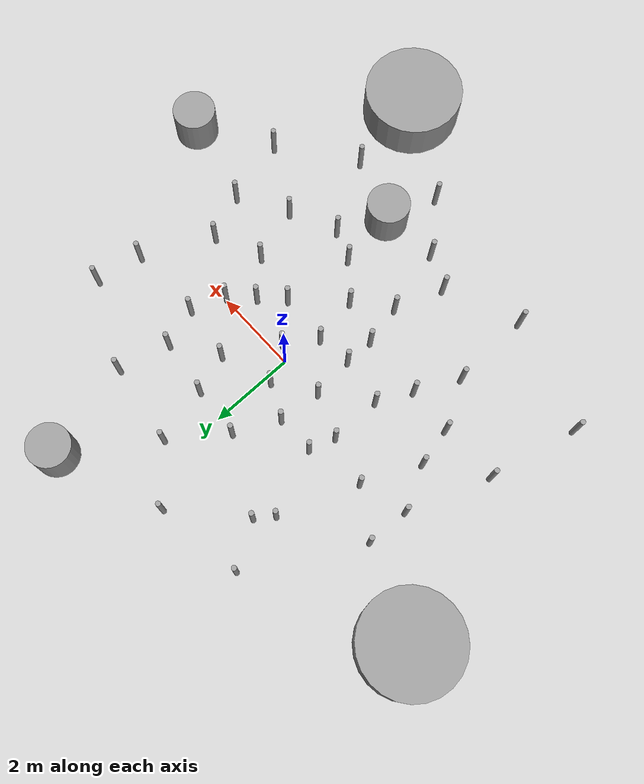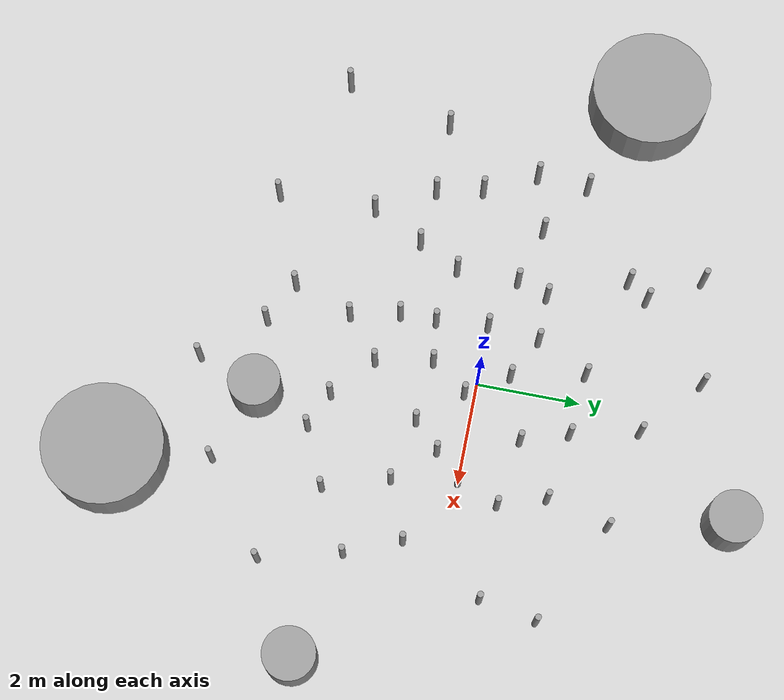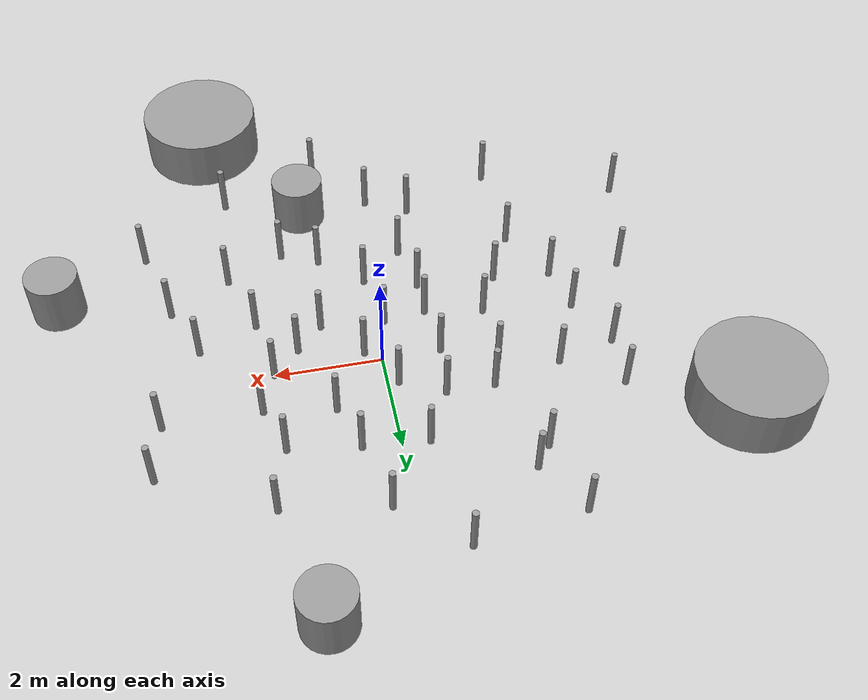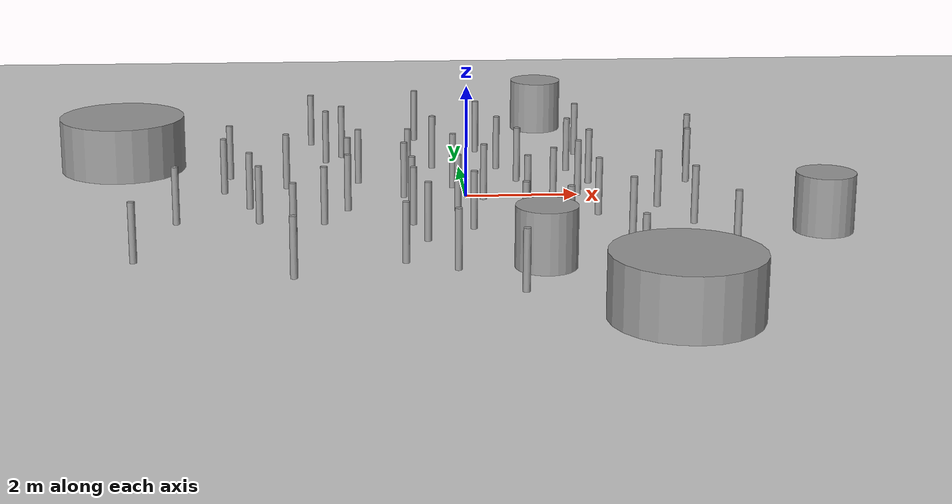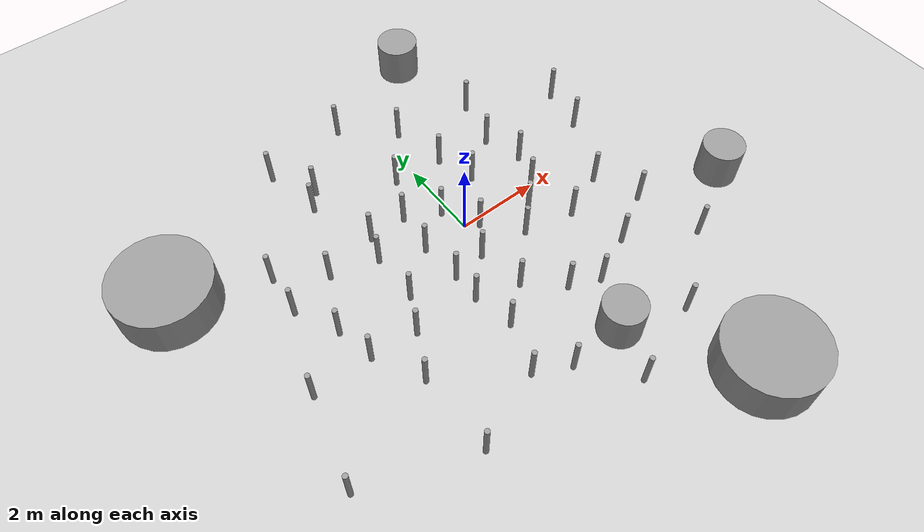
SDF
<sdf version="1.7">
 <world name="default">
  <plugin name="gazebo_ros_state" filename="libgazebo_ros_state.so">
   <ros>
    <namespace>/gazebo</namespace>
    <argument>model_states:=model_states_demo</argument>
    <argument>link_states:=link_states_demo</argument>
   </ros>
   <update_rate>1.0</update_rate>
  </plugin>
  <light name="sun" type="directional">
   <pose>0 0 10 0 -0 0</pose>
   <diffuse>0.8 0.8 0.8 1</diffuse>
   <specular>0.2 0.2 0.2 1</specular>
   <attenuation>
    <range>1000</range>
    <constant>0.9</constant>
    <linear>0.01</linear>
    <quadratic>0.001</quadratic>
   </attenuation>
   <direction>-0.5 0.1 -0.9</direction>
   <spot><inner_angle>0</inner_angle><outer_angle>0</outer_angle><falloff>0</falloff></spot>
  </light>
  <model name="ground_plane">
   <static>1</static>
   <link name="link">
    <collision name="collision">
     <geometry><plane><normal>0 0 1</normal><size>100 100</size></plane></geometry>
     <surface><friction><ode><mu>100</mu><mu2>50</mu2></ode></friction></surface>
    </collision>
    <visual name="visual">
     <cast_shadows>0</cast_shadows>
     <geometry><plane><normal>0 0 1</normal><size>100 100</size></plane></geometry>
     <material>
      <script><uri>file://media/materials/scripts/gazebo.material</uri><name>Gazebo/Grey</name></script>
     </material>
    </visual>
   </link>
  </model>
  <gravity>0 0 -9.8</gravity>
  <magnetic_field>6e-06 2.3e-05 -4.2e-05</magnetic_field>
  <atmosphere type="adiabatic"/>
  <physics type="ode">
   <max_step_size>0.001</max_step_size>
   <real_time_factor>1</real_time_factor>
   <real_time_update_rate>1000</real_time_update_rate>
  </physics>
  <scene><ambient>0.4 0.4 0.4 1</ambient><background>0.7 0.7 0.7 1</background><shadows>1</shadows></scene>
  <spherical_coordinates>
   <surface_model>EARTH_WGS84</surface_model>
   <latitude_deg>0</latitude_deg>
   <longitude_deg>0</longitude_deg>
   <elevation>0</elevation>
   <heading_deg>0</heading_deg>
  </spherical_coordinates>
  <model name="unit_cylinder_0_clone">
   <pose>1.00006 -0.999898 0.499992 0 -0 0.000604</pose>
   <link name="link">
    <inertial>
     <mass>1</mass>
     <inertia><ixx>0.145833</ixx><ixy>0</ixy><ixz>0</ixz><iyy>0.145833</iyy><iyz>0</iyz><izz>0.125</izz></inertia>
    </inertial>
    <collision name="collision">
     <geometry><cylinder><radius>0.06</radius><length>1</length></cylinder></geometry>
    </collision>
    <visual name="visual">
     <geometry><cylinder><radius>0.06</radius><length>1</length></cylinder></geometry>
     <material>
      <script><name>Gazebo/Grey</name><uri>file://media/materials/scripts/gazebo.material</uri></script>
     </material>
    </visual>
   </link>
  </model>
  <model name="unit_cylinder_0_clone_0">
   <pose>-0.999946 1.00011 0.499993 -1e-06 0 0.00091</pose>
   <link name="link">
    <inertial>
     <mass>1</mass>
     <inertia><ixx>0.145833</ixx><ixy>0</ixy><ixz>0</ixz><iyy>0.145833</iyy><iyz>0</iyz><izz>0.125</izz></inertia>
    </inertial>
    <collision name="collision">
     <geometry><cylinder><radius>0.06</radius><length>1</length></cylinder></geometry>
    </collision>
    <visual name="visual">
     <geometry><cylinder><radius>0.06</radius><length>1</length></cylinder></geometry>
     <material>
      <script><name>Gazebo/Grey</name><uri>file://media/materials/scripts/gazebo.material</uri></script>
     </material>
    </visual>
   </link>
  </model>
  <model name="unit_cylinder_0_clone_1">
   <pose>-0.999947 -0.999936 0.499995 0 0 -0.005683</pose>
   <link name="link">
    <inertial>
     <mass>1</mass>
     <inertia><ixx>0.145833</ixx><ixy>0</ixy><ixz>0</ixz><iyy>0.145833</iyy><iyz>0</iyz><izz>0.125</izz></inertia>
    </inertial>
    <collision name="collision">
     <geometry><cylinder><radius>0.06</radius><length>1</length></cylinder></geometry>
    </collision>
    <visual name="visual">
     <geometry><cylinder><radius>0.06</radius><length>1</length></cylinder></geometry>
     <material>
      <script><name>Gazebo/Grey</name><uri>file://media/materials/scripts/gazebo.material</uri></script>
     </material>
    </visual>
   </link>
  </model>
  <model name="unit_cylinder_0_clone_2">
   <pose>2.00006 8.5e-05 0.499995 0 0 -0.001848</pose>
   <link name="link">
    <inertial>
     <mass>1</mass>
     <inertia><ixx>0.145833</ixx><ixy>0</ixy><ixz>0</ixz><iyy>0.145833</iyy><iyz>0</iyz><izz>0.125</izz></inertia>
    </inertial>
    <collision name="collision">
     <geometry><cylinder><radius>0.06</radius><length>1</length></cylinder></geometry>
    </collision>
    <visual name="visual">
     <geometry><cylinder><radius>0.06</radius><length>1</length></cylinder></geometry>
     <material>
      <script><name>Gazebo/Grey</name><uri>file://media/materials/scripts/gazebo.material</uri></script>
     </material>
    </visual>
   </link>
  </model>
  <model name="unit_cylinder_0_clone_3">
   <pose>5.8e-05 -1.9999 0.499992 0 -0 0.000986</pose>
   <link name="link">
    <inertial>
     <mass>1</mass>
     <inertia><ixx>0.145833</ixx><ixy>0</ixy><ixz>0</ixz><iyy>0.145833</iyy><iyz>0</iyz><izz>0.125</izz></inertia>
    </inertial>
    <collision name="collision">
     <geometry><cylinder><radius>0.06</radius><length>1</length></cylinder></geometry>
    </collision>
    <visual name="visual">
     <geometry><cylinder><radius>0.06</radius><length>1</length></cylinder></geometry>
     <material>
      <script><name>Gazebo/Grey</name><uri>file://media/materials/scripts/gazebo.material</uri></script>
     </material>
    </visual>
   </link>
  </model>
  <model name="unit_cylinder_0_clone_4">
   <pose>1.50006 -2.9999 0.499992 -1e-06 0 0.000952</pose>
   <link name="link">
    <inertial>
     <mass>1</mass>
     <inertia><ixx>0.145833</ixx><ixy>0</ixy><ixz>0</ixz><iyy>0.145833</iyy><iyz>0</iyz><izz>0.125</izz></inertia>
    </inertial>
    <collision name="collision">
     <geometry><cylinder><radius>0.06</radius><length>1</length></cylinder></geometry>
    </collision>
    <visual name="visual">
     <geometry><cylinder><radius>0.06</radius><length>1</length></cylinder></geometry>
     <material>
      <script><name>Gazebo/Grey</name><uri>file://media/materials/scripts/gazebo.material</uri></script>
     </material>
    </visual>
   </link>
  </model>
  <model name="unit_cylinder_0_clone_5">
   <pose>-0.499955 2.00008 0.499992 0 -0 0.000494</pose>
   <link name="link">
    <inertial>
     <mass>1</mass>
     <inertia><ixx>0.145833</ixx><ixy>0</ixy><ixz>0</ixz><iyy>0.145833</iyy><iyz>0</iyz><izz>0.125</izz></inertia>
    </inertial>
    <collision name="collision">
     <geometry><cylinder><radius>0.06</radius><length>1</length></cylinder></geometry>
    </collision>
    <visual name="visual">
     <geometry><cylinder><radius>0.06</radius><length>1</length></cylinder></geometry>
     <material>
      <script><name>Gazebo/Grey</name><uri>file://media/materials/scripts/gazebo.material</uri></script>
     </material>
    </visual>
   </link>
  </model>
  <model name="unit_cylinder_0_clone_6">
   <pose>-0.999952 -1.69991 0.499992 0 -0 0.000467</pose>
   <link name="link">
    <inertial>
     <mass>1</mass>
     <inertia><ixx>0.145833</ixx><ixy>0</ixy><ixz>0</ixz><iyy>0.145833</iyy><iyz>0</iyz><izz>0.125</izz></inertia>
    </inertial>
    <collision name="collision">
     <geometry><cylinder><radius>0.06</radius><length>1</length></cylinder></geometry>
    </collision>
    <visual name="visual">
     <geometry><cylinder><radius>0.06</radius><length>1</length></cylinder></geometry>
     <material>
      <script><name>Gazebo/Grey</name><uri>file://media/materials/scripts/gazebo.material</uri></script>
     </material>
    </visual>
   </link>
  </model>
  <model name="unit_cylinder_0_clone_7">
   <pose>2.30005 0.80008 0.499998 0 -0 0.000127</pose>
   <link name="link">
    <inertial>
     <mass>1</mass>
     <inertia><ixx>0.145833</ixx><ixy>0</ixy><ixz>0</ixz><iyy>0.145833</iyy><iyz>0</iyz><izz>0.125</izz></inertia>
    </inertial>
    <collision name="collision">
     <geometry><cylinder><radius>0.06</radius><length>1</length></cylinder></geometry>
    </collision>
    <visual name="visual">
     <geometry><cylinder><radius>0.06</radius><length>1</length></cylinder></geometry>
     <material>
      <script><name>Gazebo/Grey</name><uri>file://media/materials/scripts/gazebo.material</uri></script>
     </material>
    </visual>
   </link>
  </model>
  <model name="unit_cylinder_0_clone_8">
   <pose>-1.09995 8.5e-05 0.499993 0 -0 0.000661</pose>
   <link name="link">
    <inertial>
     <mass>1</mass>
     <inertia><ixx>0.145833</ixx><ixy>0</ixy><ixz>0</ixz><iyy>0.145833</iyy><iyz>0</iyz><izz>0.125</izz></inertia>
    </inertial>
    <collision name="collision">
     <geometry><cylinder><radius>0.06</radius><length>1</length></cylinder></geometry>
    </collision>
    <visual name="visual">
     <geometry><cylinder><radius>0.06</radius><length>1</length></cylinder></geometry>
     <material>
      <script><name>Gazebo/Grey</name><uri>file://media/materials/scripts/gazebo.material</uri></script>
     </material>
    </visual>
   </link>
  </model>
  <model name="unit_cylinder_0_clone_9">
   <pose>3.30004 -0.799924 0.499992 0 -0 0.000395</pose>
   <link name="link">
    <inertial>
     <mass>1</mass>
     <inertia><ixx>0.145833</ixx><ixy>0</ixy><ixz>0</ixz><iyy>0.145833</iyy><iyz>0</iyz><izz>0.125</izz></inertia>
    </inertial>
    <collision name="collision">
     <geometry><cylinder><radius>0.06</radius><length>1</length></cylinder></geometry>
    </collision>
    <visual name="visual">
     <geometry><cylinder><radius>0.06</radius><length>1</length></cylinder></geometry>
     <material>
      <script><name>Gazebo/Grey</name><uri>file://media/materials/scripts/gazebo.material</uri></script>
     </material>
    </visual>
   </link>
  </model>
  <model name="unit_cylinder_0_clone_10">
   <pose>-1.89995 1.00005 0.499995 0 0 -0.005036</pose>
   <link name="link">
    <inertial>
     <mass>1</mass>
     <inertia><ixx>0.145833</ixx><ixy>0</ixy><ixz>0</ixz><iyy>0.145833</iyy><iyz>0</iyz><izz>0.125</izz></inertia>
    </inertial>
    <collision name="collision">
     <geometry><cylinder><radius>0.06</radius><length>1</length></cylinder></geometry>
    </collision>
    <visual name="visual">
     <geometry><cylinder><radius>0.06</radius><length>1</length></cylinder></geometry>
     <material>
      <script><name>Gazebo/Grey</name><uri>file://media/materials/scripts/gazebo.material</uri></script>
     </material>
    </visual>
   </link>
  </model>
  <model name="unit_cylinder_0_clone_11">
   <pose>0.800044 -2.69993 0.499993 0 -0 0.000522</pose>
   <link name="link">
    <inertial>
     <mass>1</mass>
     <inertia><ixx>0.145833</ixx><ixy>0</ixy><ixz>0</ixz><iyy>0.145833</iyy><iyz>0</iyz><izz>0.125</izz></inertia>
    </inertial>
    <collision name="collision">
     <geometry><cylinder><radius>0.06</radius><length>1</length></cylinder></geometry>
    </collision>
    <visual name="visual">
     <geometry><cylinder><radius>0.06</radius><length>1</length></cylinder></geometry>
     <material>
      <script><name>Gazebo/Grey</name><uri>file://media/materials/scripts/gazebo.material</uri></script>
     </material>
    </visual>
   </link>
  </model>
  <model name="unit_cylinder_0_clone_12">
   <pose>0.30004 -0.199926 0.499997 0 -0 0.000552</pose>
   <link name="link">
    <inertial>
     <mass>1</mass>
     <inertia><ixx>0.145833</ixx><ixy>0</ixy><ixz>0</ixz><iyy>0.145833</iyy><iyz>0</iyz><izz>0.125</izz></inertia>
    </inertial>
    <collision name="collision">
     <geometry><cylinder><radius>0.06</radius><length>1</length></cylinder></geometry>
    </collision>
    <visual name="visual">
     <geometry><cylinder><radius>0.06</radius><length>1</length></cylinder></geometry>
     <material>
      <script><name>Gazebo/Grey</name><uri>file://media/materials/scripts/gazebo.material</uri></script>
     </material>
    </visual>
   </link>
  </model>
  <model name="unit_cylinder_0_clone_13">
   <pose>-0.199959 0.600079 0.499992 0 -0 0.000937</pose>
   <link name="link">
    <inertial>
     <mass>1</mass>
     <inertia><ixx>0.145833</ixx><ixy>0</ixy><ixz>0</ixz><iyy>0.145833</iyy><iyz>0</iyz><izz>0.125</izz></inertia>
    </inertial>
    <collision name="collision">
     <geometry><cylinder><radius>0.06</radius><length>1</length></cylinder></geometry>
    </collision>
    <visual name="visual">
     <geometry><cylinder><radius>0.06</radius><length>1</length></cylinder></geometry>
     <material>
      <script><name>Gazebo/Grey</name><uri>file://media/materials/scripts/gazebo.material</uri></script>
     </material>
    </visual>
   </link>
  </model>
  <model name="unit_cylinder_0_clone_14">
   <pose>-2.09997 -0.799925 0.499998 -1e-06 -0 0.000723</pose>
   <link name="link">
    <inertial>
     <mass>1</mass>
     <inertia><ixx>0.145833</ixx><ixy>0</ixy><ixz>0</ixz><iyy>0.145833</iyy><iyz>0</iyz><izz>0.125</izz></inertia>
    </inertial>
    <collision name="collision">
     <geometry><cylinder><radius>0.06</radius><length>1</length></cylinder></geometry>
    </collision>
    <visual name="visual">
     <geometry><cylinder><radius>0.06</radius><length>1</length></cylinder></geometry>
     <material>
      <script><name>Gazebo/Grey</name><uri>file://media/materials/scripts/gazebo.material</uri></script>
     </material>
    </visual>
   </link>
  </model>
  <model name="unit_cylinder_0_clone_15">
   <pose>-0.199963 -0.89993 0.499998 -1e-06 0 0.000563</pose>
   <link name="link">
    <inertial>
     <mass>1</mass>
     <inertia><ixx>0.145833</ixx><ixy>0</ixy><ixz>0</ixz><iyy>0.145833</iyy><iyz>0</iyz><izz>0.125</izz></inertia>
    </inertial>
    <collision name="collision">
     <geometry><cylinder><radius>0.06</radius><length>1</length></cylinder></geometry>
    </collision>
    <visual name="visual">
     <geometry><cylinder><radius>0.06</radius><length>1</length></cylinder></geometry>
     <material>
      <script><name>Gazebo/Grey</name><uri>file://media/materials/scripts/gazebo.material</uri></script>
     </material>
    </visual>
   </link>
  </model>
  <model name="unit_cylinder_0_clone_16">
   <pose>0.700038 1.90007 0.5 1e-06 -0 0.000552</pose>
   <link name="link">
    <inertial>
     <mass>1</mass>
     <inertia><ixx>0.145833</ixx><ixy>0</ixy><ixz>0</ixz><iyy>0.145833</iyy><iyz>0</iyz><izz>0.125</izz></inertia>
    </inertial>
    <collision name="collision">
     <geometry><cylinder><radius>0.06</radius><length>1</length></cylinder></geometry>
    </collision>
    <visual name="visual">
     <geometry><cylinder><radius>0.06</radius><length>1</length></cylinder></geometry>
     <material>
      <script><name>Gazebo/Grey</name><uri>file://media/materials/scripts/gazebo.material</uri></script>
     </material>
    </visual>
   </link>
  </model>
  <model name="unit_cylinder_0_clone_17">
   <pose>1.50004 -0.499918 0.499998 0 -0 0.000994</pose>
   <link name="link">
    <inertial>
     <mass>1</mass>
     <inertia><ixx>0.145833</ixx><ixy>0</ixy><ixz>0</ixz><iyy>0.145833</iyy><iyz>0</iyz><izz>0.125</izz></inertia>
    </inertial>
    <collision name="collision">
     <geometry><cylinder><radius>0.06</radius><length>1</length></cylinder></geometry>
    </collision>
    <visual name="visual">
     <geometry><cylinder><radius>0.06</radius><length>1</length></cylinder></geometry>
     <material>
      <script><name>Gazebo/Grey</name><uri>file://media/materials/scripts/gazebo.material</uri></script>
     </material>
    </visual>
   </link>
  </model>
  <model name="unit_cylinder_0_clone_13_clone">
   <pose>1.00004 1.00005 0.499995 0 0 -0.002487</pose>
   <link name="link">
    <inertial>
     <mass>1</mass>
     <inertia><ixx>0.145833</ixx><ixy>0</ixy><ixz>0</ixz><iyy>0.145833</iyy><iyz>0</iyz><izz>0.125</izz></inertia>
    </inertial>
    <collision name="collision">
     <geometry><cylinder><radius>0.06</radius><length>1</length></cylinder></geometry>
    </collision>
    <visual name="visual">
     <geometry><cylinder><radius>0.06</radius><length>1</length></cylinder></geometry>
     <material>
      <script><name>Gazebo/Grey</name><uri>file://media/materials/scripts/gazebo.material</uri></script>
     </material>
    </visual>
   </link>
  </model>
  <model name="unit_cylinder_0_clone_clone">
   <pose>-2.09997 0.40004 0.499995 0 0 -0.003295</pose>
   <link name="link">
    <inertial>
     <mass>1</mass>
     <inertia><ixx>0.145833</ixx><ixy>0</ixy><ixz>0</ixz><iyy>0.145833</iyy><iyz>0</iyz><izz>0.125</izz></inertia>
    </inertial>
    <collision name="collision">
     <geometry><cylinder><radius>0.06</radius><length>1</length></cylinder></geometry>
    </collision>
    <visual name="visual">
     <geometry><cylinder><radius>0.06</radius><length>1</length></cylinder></geometry>
     <material>
      <script><name>Gazebo/Grey</name><uri>file://media/materials/scripts/gazebo.material</uri></script>
     </material>
    </visual>
   </link>
  </model>
  <model name="unit_cylinder_0_clone_clone_0">
   <pose>0.400039 3.20007 0.499998 0 -0 0.001138</pose>
   <link name="link">
    <inertial>
     <mass>1</mass>
     <inertia><ixx>0.145833</ixx><ixy>0</ixy><ixz>0</ixz><iyy>0.145833</iyy><iyz>0</iyz><izz>0.125</izz></inertia>
    </inertial>
    <collision name="collision">
     <geometry><cylinder><radius>0.06</radius><length>1</length></cylinder></geometry>
    </collision>
    <visual name="visual">
     <geometry><cylinder><radius>0.06</radius><length>1</length></cylinder></geometry>
     <material>
      <script><name>Gazebo/Grey</name><uri>file://media/materials/scripts/gazebo.material</uri></script>
     </material>
    </visual>
   </link>
  </model>
  <model name="unit_cylinder_0_clone_clone_1">
   <pose>4.30003 1.90005 0.499995 0 0 -0.000958</pose>
   <link name="link">
    <inertial>
     <mass>1</mass>
     <inertia><ixx>0.145833</ixx><ixy>0</ixy><ixz>0</ixz><iyy>0.145833</iyy><iyz>0</iyz><izz>0.125</izz></inertia>
    </inertial>
    <collision name="collision">
     <geometry><cylinder><radius>0.06</radius><length>1</length></cylinder></geometry>
    </collision>
    <visual name="visual">
     <geometry><cylinder><radius>0.06</radius><length>1</length></cylinder></geometry>
     <material>
      <script><name>Gazebo/Grey</name><uri>file://media/materials/scripts/gazebo.material</uri></script>
     </material>
    </visual>
   </link>
  </model>
  <model name="unit_cylinder_0_clone_clone_2">
   <pose>2.30003 2.90006 0.499993 0 -0 0.000386</pose>
   <link name="link">
    <inertial>
     <mass>1</mass>
     <inertia><ixx>0.145833</ixx><ixy>0</ixy><ixz>0</ixz><iyy>0.145833</iyy><iyz>0</iyz><izz>0.125</izz></inertia>
    </inertial>
    <collision name="collision">
     <geometry><cylinder><radius>0.06</radius><length>1</length></cylinder></geometry>
    </collision>
    <visual name="visual">
     <geometry><cylinder><radius>0.06</radius><length>1</length></cylinder></geometry>
     <material>
      <script><name>Gazebo/Grey</name><uri>file://media/materials/scripts/gazebo.material</uri></script>
     </material>
    </visual>
   </link>
  </model>
  <model name="unit_cylinder_0_clone_clone_3">
   <pose>-2.19997 2.90006 0.499998 0 -0 0.000727</pose>
   <link name="link">
    <inertial>
     <mass>1</mass>
     <inertia><ixx>0.145833</ixx><ixy>0</ixy><ixz>0</ixz><iyy>0.145833</iyy><iyz>0</iyz><izz>0.125</izz></inertia>
    </inertial>
    <collision name="collision">
     <geometry><cylinder><radius>0.06</radius><length>1</length></cylinder></geometry>
    </collision>
    <visual name="visual">
     <geometry><cylinder><radius>0.06</radius><length>1</length></cylinder></geometry>
     <material>
      <script><name>Gazebo/Grey</name><uri>file://media/materials/scripts/gazebo.material</uri></script>
     </material>
    </visual>
   </link>
  </model>
  <model name="unit_cylinder_0_clone_clone_4">
   <pose>-3.19997 0.700034 0.499995 0 0 -0.002852</pose>
   <link name="link">
    <inertial>
     <mass>1</mass>
     <inertia><ixx>0.145833</ixx><ixy>0</ixy><ixz>0</ixz><iyy>0.145833</iyy><iyz>0</iyz><izz>0.125</izz></inertia>
    </inertial>
    <collision name="collision">
     <geometry><cylinder><radius>0.06</radius><length>1</length></cylinder></geometry>
    </collision>
    <visual name="visual">
     <geometry><cylinder><radius>0.06</radius><length>1</length></cylinder></geometry>
     <material>
      <script><name>Gazebo/Grey</name><uri>file://media/materials/scripts/gazebo.material</uri></script>
     </material>
    </visual>
   </link>
  </model>
  <model name="unit_cylinder_0_clone_clone_5">
   <pose>-4.24997 1.40005 0.499991 0 -0 0.000367</pose>
   <link name="link">
    <inertial>
     <mass>1</mass>
     <inertia><ixx>0.145833</ixx><ixy>0</ixy><ixz>0</ixz><iyy>0.145833</iyy><iyz>0</iyz><izz>0.125</izz></inertia>
    </inertial>
    <collision name="collision">
     <geometry><cylinder><radius>0.06</radius><length>1</length></cylinder></geometry>
    </collision>
    <visual name="visual">
     <geometry><cylinder><radius>0.06</radius><length>1</length></cylinder></geometry>
     <material>
      <script><name>Gazebo/Grey</name><uri>file://media/materials/scripts/gazebo.material</uri></script>
     </material>
    </visual>
   </link>
  </model>
  <model name="unit_cylinder_0_clone_clone_6">
   <pose>-3.79997 -0.599944 0.499993 -1e-06 0 0.000837</pose>
   <link name="link">
    <inertial>
     <mass>1</mass>
     <inertia><ixx>0.145833</ixx><ixy>0</ixy><ixz>0</ixz><iyy>0.145833</iyy><iyz>0</iyz><izz>0.125</izz></inertia>
    </inertial>
    <collision name="collision">
     <geometry><cylinder><radius>0.06</radius><length>1</length></cylinder></geometry>
    </collision>
    <visual name="visual">
     <geometry><cylinder><radius>0.06</radius><length>1</length></cylinder></geometry>
     <material>
      <script><name>Gazebo/Grey</name><uri>file://media/materials/scripts/gazebo.material</uri></script>
     </material>
    </visual>
   </link>
  </model>
  <model name="unit_cylinder_0_clone_clone_7">
   <pose>-2.49998 -1.59995 0.499999 -1e-06 -0 0.000384</pose>
   <link name="link">
    <inertial>
     <mass>1</mass>
     <inertia><ixx>0.145833</ixx><ixy>0</ixy><ixz>0</ixz><iyy>0.145833</iyy><iyz>0</iyz><izz>0.125</izz></inertia>
    </inertial>
    <collision name="collision">
     <geometry><cylinder><radius>0.06</radius><length>1</length></cylinder></geometry>
    </collision>
    <visual name="visual">
     <geometry><cylinder><radius>0.06</radius><length>1</length></cylinder></geometry>
     <material>
      <script><name>Gazebo/Grey</name><uri>file://media/materials/scripts/gazebo.material</uri></script>
     </material>
    </visual>
   </link>
  </model>
  <model name="unit_cylinder_0_clone_clone_8">
   <pose>-0.399977 -4.19996 0.49999 0 -0 0.000463</pose>
   <link name="link">
    <inertial>
     <mass>1</mass>
     <inertia><ixx>0.145833</ixx><ixy>0</ixy><ixz>0</ixz><iyy>0.145833</iyy><iyz>0</iyz><izz>0.125</izz></inertia>
    </inertial>
    <collision name="collision">
     <geometry><cylinder><radius>0.06</radius><length>1</length></cylinder></geometry>
    </collision>
    <visual name="visual">
     <geometry><cylinder><radius>0.06</radius><length>1</length></cylinder></geometry>
     <material>
      <script><name>Gazebo/Grey</name><uri>file://media/materials/scripts/gazebo.material</uri></script>
     </material>
    </visual>
   </link>
  </model>
  <model name="unit_cylinder_0_clone_clone_9">
   <pose>-2.99997 -2.59995 0.499991 -1e-06 -0 0.00071</pose>
   <link name="link">
    <inertial>
     <mass>1</mass>
     <inertia><ixx>0.145833</ixx><ixy>0</ixy><ixz>0</ixz><iyy>0.145833</iyy><iyz>0</iyz><izz>0.125</izz></inertia>
    </inertial>
    <collision name="collision">
     <geometry><cylinder><radius>0.06</radius><length>1</length></cylinder></geometry>
    </collision>
    <visual name="visual">
     <geometry><cylinder><radius>0.06</radius><length>1</length></cylinder></geometry>
     <material>
      <script><name>Gazebo/Grey</name><uri>file://media/materials/scripts/gazebo.material</uri></script>
     </material>
    </visual>
   </link>
  </model>
  <model name="unit_cylinder_0_clone_clone_10">
   <pose>-2.94998 -4.49995 0.499998 0 -0 0.000538</pose>
   <link name="link">
    <inertial>
     <mass>1</mass>
     <inertia><ixx>0.145833</ixx><ixy>0</ixy><ixz>0</ixz><iyy>0.145833</iyy><iyz>0</iyz><izz>0.125</izz></inertia>
    </inertial>
    <collision name="collision">
     <geometry><cylinder><radius>0.06</radius><length>1</length></cylinder></geometry>
    </collision>
    <visual name="visual">
     <geometry><cylinder><radius>0.06</radius><length>1</length></cylinder></geometry>
     <material>
      <script><name>Gazebo/Grey</name><uri>file://media/materials/scripts/gazebo.material</uri></script>
     </material>
    </visual>
   </link>
  </model>
  <model name="unit_cylinder_0_clone_clone_11">
   <pose>-4.99998 -1.49997 0.499992 0 1e-06 0.00059</pose>
   <link name="link">
    <inertial>
     <mass>1</mass>
     <inertia><ixx>0.145833</ixx><ixy>0</ixy><ixz>0</ixz><iyy>0.145833</iyy><iyz>0</iyz><izz>0.125</izz></inertia>
    </inertial>
    <collision name="collision">
     <geometry><cylinder><radius>0.06</radius><length>1</length></cylinder></geometry>
    </collision>
    <visual name="visual">
     <geometry><cylinder><radius>0.06</radius><length>1</length></cylinder></geometry>
     <material>
      <script><name>Gazebo/Grey</name><uri>file://media/materials/scripts/gazebo.material</uri></script>
     </material>
    </visual>
   </link>
  </model>
  <model name="unit_cylinder_0_clone_clone_12">
   <pose>-2.49998 2.50003 0.499995 0 0 -0.001658</pose>
   <link name="link">
    <inertial>
     <mass>1</mass>
     <inertia><ixx>0.145833</ixx><ixy>0</ixy><ixz>0</ixz><iyy>0.145833</iyy><iyz>0</iyz><izz>0.125</izz></inertia>
    </inertial>
    <collision name="collision">
     <geometry><cylinder><radius>0.06</radius><length>1</length></cylinder></geometry>
    </collision>
    <visual name="visual">
     <geometry><cylinder><radius>0.06</radius><length>1</length></cylinder></geometry>
     <material>
      <script><name>Gazebo/Grey</name><uri>file://media/materials/scripts/gazebo.material</uri></script>
     </material>
    </visual>
   </link>
  </model>
  <model name="unit_cylinder_0_clone_clone_13">
   <pose>-0.799983 -2.64997 0.499993 0 -0 0.000397</pose>
   <link name="link">
    <inertial>
     <mass>1</mass>
     <inertia><ixx>0.145833</ixx><ixy>0</ixy><ixz>0</ixz><iyy>0.145833</iyy><iyz>0</iyz><izz>0.125</izz></inertia>
    </inertial>
    <collision name="collision">
     <geometry><cylinder><radius>0.06</radius><length>1</length></cylinder></geometry>
    </collision>
    <visual name="visual">
     <geometry><cylinder><radius>0.06</radius><length>1</length></cylinder></geometry>
     <material>
      <script><name>Gazebo/Grey</name><uri>file://media/materials/scripts/gazebo.material</uri></script>
     </material>
    </visual>
   </link>
  </model>
  <model name="unit_cylinder_0_clone_clone_14">
   <pose>2.45002 -4.64997 0.499998 0 -0 0.000461</pose>
   <link name="link">
    <inertial>
     <mass>1</mass>
     <inertia><ixx>0.145833</ixx><ixy>0</ixy><ixz>0</ixz><iyy>0.145833</iyy><iyz>0</iyz><izz>0.125</izz></inertia>
    </inertial>
    <collision name="collision">
     <geometry><cylinder><radius>0.06</radius><length>1</length></cylinder></geometry>
    </collision>
    <visual name="visual">
     <geometry><cylinder><radius>0.06</radius><length>1</length></cylinder></geometry>
     <material>
      <script><name>Gazebo/Grey</name><uri>file://media/materials/scripts/gazebo.material</uri></script>
     </material>
    </visual>
   </link>
  </model>
  <model name="unit_cylinder_0_clone_clone_15">
   <pose>-1.19998 -3.79997 0.499992 0 -0 0.000324</pose>
   <link name="link">
    <inertial>
     <mass>1</mass>
     <inertia><ixx>0.145833</ixx><ixy>0</ixy><ixz>0</ixz><iyy>0.145833</iyy><iyz>0</iyz><izz>0.125</izz></inertia>
    </inertial>
    <collision name="collision">
     <geometry><cylinder><radius>0.06</radius><length>1</length></cylinder></geometry>
    </collision>
    <visual name="visual">
     <geometry><cylinder><radius>0.06</radius><length>1</length></cylinder></geometry>
     <material>
      <script><name>Gazebo/Grey</name><uri>file://media/materials/scripts/gazebo.material</uri></script>
     </material>
    </visual>
   </link>
  </model>
  <model name="unit_cylinder_0_clone_clone_16">
   <pose>4.10002 0.800032 0.499999 -2e-06 -0 0.000409</pose>
   <link name="link">
    <inertial>
     <mass>1</mass>
     <inertia><ixx>0.145833</ixx><ixy>0</ixy><ixz>0</ixz><iyy>0.145833</iyy><iyz>0</iyz><izz>0.125</izz></inertia>
    </inertial>
    <collision name="collision">
     <geometry><cylinder><radius>0.06</radius><length>1</length></cylinder></geometry>
    </collision>
    <visual name="visual">
     <geometry><cylinder><radius>0.06</radius><length>1</length></cylinder></geometry>
     <material>
      <script><name>Gazebo/Grey</name><uri>file://media/materials/scripts/gazebo.material</uri></script>
     </material>
    </visual>
   </link>
  </model>
  <model name="unit_cylinder_0_clone_clone_17">
   <pose>2.20002 -1.24997 0.499993 0 -0 0.000545</pose>
   <link name="link">
    <inertial>
     <mass>1</mass>
     <inertia><ixx>0.145833</ixx><ixy>0</ixy><ixz>0</ixz><iyy>0.145833</iyy><iyz>0</iyz><izz>0.125</izz></inertia>
    </inertial>
    <collision name="collision">
     <geometry><cylinder><radius>0.06</radius><length>1</length></cylinder></geometry>
    </collision>
    <visual name="visual">
     <geometry><cylinder><radius>0.06</radius><length>1</length></cylinder></geometry>
     <material>
      <script><name>Gazebo/Grey</name><uri>file://media/materials/scripts/gazebo.material</uri></script>
     </material>
    </visual>
   </link>
  </model>
  <model name="unit_cylinder_0_clone_clone_18">
   <pose>2.60001 -2.49997 0.499995 0 -0 0.000268</pose>
   <link name="link">
    <inertial>
     <mass>1</mass>
     <inertia><ixx>0.145833</ixx><ixy>0</ixy><ixz>0</ixz><iyy>0.145833</iyy><iyz>0</iyz><izz>0.125</izz></inertia>
    </inertial>
    <collision name="collision">
     <geometry><cylinder><radius>0.06</radius><length>1</length></cylinder></geometry>
    </collision>
    <visual name="visual">
     <geometry><cylinder><radius>0.06</radius><length>1</length></cylinder></geometry>
     <material>
      <script><name>Gazebo/Grey</name><uri>file://media/materials/scripts/gazebo.material</uri></script>
     </material>
    </visual>
   </link>
  </model>
  <model name="unit_cylinder_0_clone_clone_19">
   <pose>4.15002 -3.39997 0.499999 0 -0 0.000438</pose>
   <link name="link">
    <inertial>
     <mass>1</mass>
     <inertia><ixx>0.145833</ixx><ixy>0</ixy><ixz>0</ixz><iyy>0.145833</iyy><iyz>0</iyz><izz>0.125</izz></inertia>
    </inertial>
    <collision name="collision">
     <geometry><cylinder><radius>0.06</radius><length>1</length></cylinder></geometry>
    </collision>
    <visual name="visual">
     <geometry><cylinder><radius>0.06</radius><length>1</length></cylinder></geometry>
     <material>
      <script><name>Gazebo/Grey</name><uri>file://media/materials/scripts/gazebo.material</uri></script>
     </material>
    </visual>
   </link>
  </model>
  <model name="unit_cylinder_0_clone_clone_20">
   <pose>-5.5 -3.59998 0.499998 0 -0 0.000307</pose>
   <link name="link">
    <inertial>
     <mass>1</mass>
     <inertia><ixx>0.145833</ixx><ixy>0</ixy><ixz>0</ixz><iyy>0.145833</iyy><iyz>0</iyz><izz>0.125</izz></inertia>
    </inertial>
    <collision name="collision">
     <geometry><cylinder><radius>0.06</radius><length>1</length></cylinder></geometry>
    </collision>
    <visual name="visual">
     <geometry><cylinder><radius>0.06</radius><length>1</length></cylinder></geometry>
     <material>
      <script><name>Gazebo/Grey</name><uri>file://media/materials/scripts/gazebo.material</uri></script>
     </material>
    </visual>
   </link>
  </model>
  <model name="unit_cylinder_0_clone_clone_21">
   <pose>3.75001 -1.84997 0.499992 -1e-06 -0 0.000634</pose>
   <link name="link">
    <inertial>
     <mass>1</mass>
     <inertia><ixx>0.145833</ixx><ixy>0</ixy><ixz>0</ixz><iyy>0.145833</iyy><iyz>0</iyz><izz>0.125</izz></inertia>
    </inertial>
    <collision name="collision">
     <geometry><cylinder><radius>0.06</radius><length>1</length></cylinder></geometry>
    </collision>
    <visual name="visual">
     <geometry><cylinder><radius>0.06</radius><length>1</length></cylinder></geometry>
     <material>
      <script><name>Gazebo/Grey</name><uri>file://media/materials/scripts/gazebo.material</uri></script>
     </material>
    </visual>
   </link>
  </model>
  <model name="unit_cylinder_0_clone_clone_22">
   <pose>-0.749989 4.20002 0.499998 0 -0 0.000406</pose>
   <link name="link">
    <inertial>
     <mass>1</mass>
     <inertia><ixx>0.145833</ixx><ixy>0</ixy><ixz>0</ixz><iyy>0.145833</iyy><iyz>0</iyz><izz>0.125</izz></inertia>
    </inertial>
    <collision name="collision">
     <geometry><cylinder><radius>0.06</radius><length>1</length></cylinder></geometry>
    </collision>
    <visual name="visual">
     <geometry><cylinder><radius>0.06</radius><length>1</length></cylinder></geometry>
     <material>
      <script><name>Gazebo/Grey</name><uri>file://media/materials/scripts/gazebo.material</uri></script>
     </material>
    </visual>
   </link>
  </model>
  <model name="unit_cylinder_0_clone_clone_23">
   <pose>-2.79999 3.90002 0.499991 0 1e-06 0.000311</pose>
   <link name="link">
    <inertial>
     <mass>1</mass>
     <inertia><ixx>0.145833</ixx><ixy>0</ixy><ixz>0</ixz><iyy>0.145833</iyy><iyz>0</iyz><izz>0.125</izz></inertia>
    </inertial>
    <collision name="collision">
     <geometry><cylinder><radius>0.06</radius><length>1</length></cylinder></geometry>
    </collision>
    <visual name="visual">
     <geometry><cylinder><radius>0.06</radius><length>1</length></cylinder></geometry>
     <material>
      <script><name>Gazebo/Grey</name><uri>file://media/materials/scripts/gazebo.material</uri></script>
     </material>
    </visual>
   </link>
  </model>
  <model name="unit_cylinder_0_clone_clone_24">
   <pose>-3.59999 -1.49999 0.499998 -1e-06 0 0.000344</pose>
   <link name="link">
    <inertial>
     <mass>1</mass>
     <inertia><ixx>0.145833</ixx><ixy>0</ixy><ixz>0</ixz><iyy>0.145833</iyy><iyz>0</iyz><izz>0.125</izz></inertia>
    </inertial>
    <collision name="collision">
     <geometry><cylinder><radius>0.06</radius><length>1</length></cylinder></geometry>
    </collision>
    <visual name="visual">
     <geometry><cylinder><radius>0.06</radius><length>1</length></cylinder></geometry>
     <material>
      <script><name>Gazebo/Grey</name><uri>file://media/materials/scripts/gazebo.material</uri></script>
     </material>
    </visual>
   </link>
  </model>
  <model name="unit_cylinder_0_clone_clone_25">
   <pose>0.55001 -5.29998 0.499999 -1e-06 0 0.000588</pose>
   <link name="link">
    <inertial>
     <mass>1</mass>
     <inertia><ixx>0.145833</ixx><ixy>0</ixy><ixz>0</ixz><iyy>0.145833</iyy><iyz>0</iyz><izz>0.125</izz></inertia>
    </inertial>
    <collision name="collision">
     <geometry><cylinder><radius>0.06</radius><length>1</length></cylinder></geometry>
    </collision>
    <visual name="visual">
     <geometry><cylinder><radius>0.06</radius><length>1</length></cylinder></geometry>
     <material>
      <script><name>Gazebo/Grey</name><uri>file://media/materials/scripts/gazebo.material</uri></script>
     </material>
    </visual>
   </link>
  </model>
  <model name="unit_cylinder_0_clone_clone_26">
   <pose>2.00001 1.70002 0.499998 0 -0 0.000464</pose>
   <link name="link">
    <inertial>
     <mass>1</mass>
     <inertia><ixx>0.145833</ixx><ixy>0</ixy><ixz>0</ixz><iyy>0.145833</iyy><iyz>0</iyz><izz>0.125</izz></inertia>
    </inertial>
    <collision name="collision">
     <geometry><cylinder><radius>0.06</radius><length>1</length></cylinder></geometry>
    </collision>
    <visual name="visual">
     <geometry><cylinder><radius>0.06</radius><length>1</length></cylinder></geometry>
     <material>
      <script><name>Gazebo/Grey</name><uri>file://media/materials/scripts/gazebo.material</uri></script>
     </material>
    </visual>
   </link>
  </model>
  <model name="unit_cylinder_0_clone_clone_27">
   <pose>-4.29999 0.400017 0.499998 0 -0 0.000465</pose>
   <link name="link">
    <inertial>
     <mass>1</mass>
     <inertia><ixx>0.145833</ixx><ixy>0</ixy><ixz>0</ixz><iyy>0.145833</iyy><iyz>0</iyz><izz>0.125</izz></inertia>
    </inertial>
    <collision name="collision">
     <geometry><cylinder><radius>0.06</radius><length>1</length></cylinder></geometry>
    </collision>
    <visual name="visual">
     <geometry><cylinder><radius>0.06</radius><length>1</length></cylinder></geometry>
     <material>
      <script><name>Gazebo/Grey</name><uri>file://media/materials/scripts/gazebo.material</uri></script>
     </material>
    </visual>
   </link>
  </model>
  <model name="unit_cylinder">
   <pose>5.82347 -2.38808 0.499995 -4e-06 4e-06 -2e-05</pose>
   <link name="link">
    <inertial>
     <mass>1</mass>
     <inertia><ixx>0.145833</ixx><ixy>0</ixy><ixz>0</ixz><iyy>0.145833</iyy><iyz>0</iyz><izz>0.125</izz></inertia>
    </inertial>
    <collision name="collision">
     <geometry><cylinder><radius>0.500002</radius><length>1</length></cylinder></geometry>
    </collision>
    <visual name="visual">
     <geometry><cylinder><radius>0.500002</radius><length>1</length></cylinder></geometry>
     <material>
      <script><name>Gazebo/Grey</name><uri>file://media/materials/scripts/gazebo.material</uri></script>
     </material>
    </visual>
   </link>
  </model>
  <model name="unit_cylinder_clone">
   <pose>-6.29766 2.25256 0.499995 -4e-06 4e-06 -2.1e-05</pose>
   <link name="link">
    <inertial>
     <mass>1</mass>
     <inertia><ixx>0.145833</ixx><ixy>0</ixy><ixz>0</ixz><iyy>0.145833</iyy><iyz>0</iyz><izz>0.125</izz></inertia>
    </inertial>
    <collision name="collision">
     <geometry><cylinder><radius>1.15402</radius><length>1</length></cylinder></geometry>
    </collision>
    <visual name="visual">
     <geometry><cylinder><radius>1.15402</radius><length>1</length></cylinder></geometry>
     <material>
      <script><name>Gazebo/Grey</name><uri>file://media/materials/scripts/gazebo.material</uri></script>
     </material>
    </visual>
   </link>
  </model>
  <model name="unit_cylinder_clone_0">
   <pose>2.72007 -6.60065 0.499991 7e-06 -7e-06 -2e-05</pose>
   <link name="link">
    <inertial>
     <mass>1</mass>
     <inertia><ixx>0.145833</ixx><ixy>0</ixy><ixz>0</ixz><iyy>0.145833</iyy><iyz>0</iyz><izz>0.125</izz></inertia>
    </inertial>
    <collision name="collision">
     <geometry><cylinder><radius>1.15402</radius><length>1</length></cylinder></geometry>
    </collision>
    <visual name="visual">
     <geometry><cylinder><radius>1.15402</radius><length>1</length></cylinder></geometry>
     <material>
      <script><name>Gazebo/Grey</name><uri>file://media/materials/scripts/gazebo.material</uri></script>
     </material>
    </visual>
   </link>
  </model>
  <model name="unit_cylinder_0">
   <pose>0.982073 -4.10409 0.499995 -5e-06 5e-06 -1e-06</pose>
   <link name="link">
    <inertial>
     <mass>1</mass>
     <inertia><ixx>0.145833</ixx><ixy>0</ixy><ixz>0</ixz><iyy>0.145833</iyy><iyz>0</iyz><izz>0.125</izz></inertia>
    </inertial>
    <collision name="collision">
     <geometry><cylinder><radius>0.499999</radius><length>1</length></cylinder></geometry>
    </collision>
    <visual name="visual">
     <geometry><cylinder><radius>0.499999</radius><length>1</length></cylinder></geometry>
     <material>
      <script><name>Gazebo/Grey</name><uri>file://media/materials/scripts/gazebo.material</uri></script>
     </material>
    </visual>
   </link>
  </model>
  <model name="unit_cylinder_1">
   <pose>1.76826 5.12382 0.499996 3e-06 3e-06 -0.000433</pose>
   <link name="link">
    <inertial>
     <mass>1</mass>
     <inertia><ixx>0.145833</ixx><ixy>0</ixy><ixz>0</ixz><iyy>0.145833</iyy><iyz>0</iyz><izz>0.125</izz></inertia>
    </inertial>
    <collision name="collision">
     <geometry><cylinder><radius>0.500001</radius><length>1</length></cylinder></geometry>
    </collision>
    <visual name="visual">
     <geometry><cylinder><radius>0.500001</radius><length>1</length></cylinder></geometry>
     <material>
      <script><name>Gazebo/Grey</name><uri>file://media/materials/scripts/gazebo.material</uri></script>
     </material>
    </visual>
   </link>
  </model>
 </world>
</sdf>
